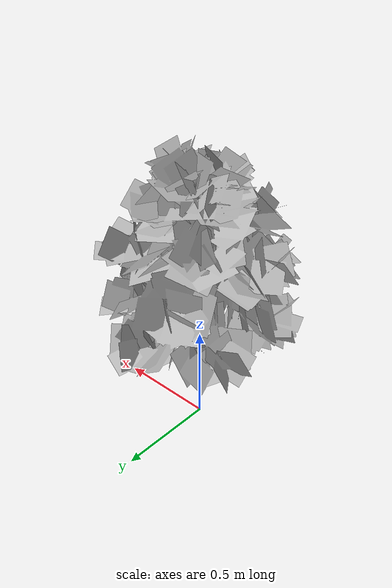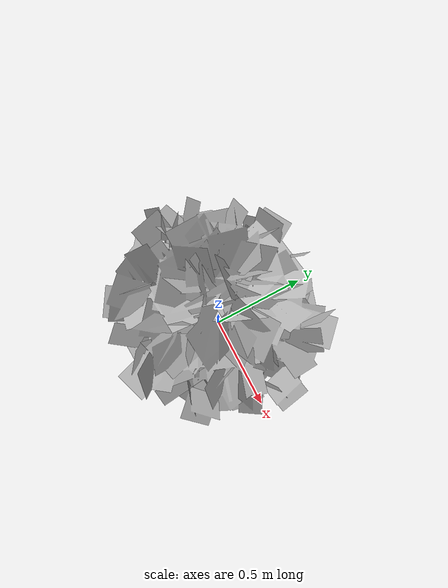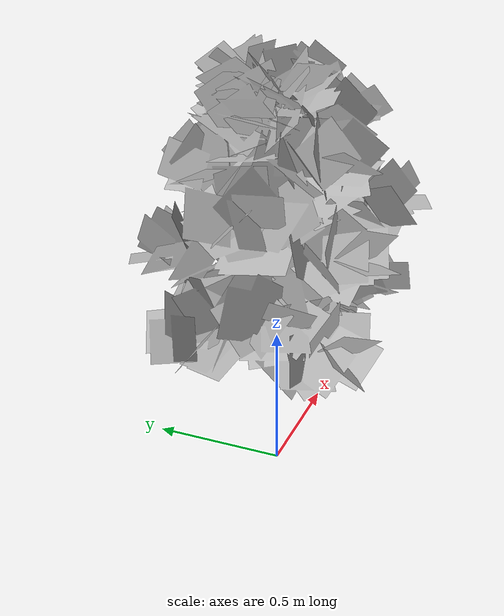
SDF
<?xml version="1.0" ?>
<sdf version="1.6">
  <model name="low_poly_shrub_-_small_texture">
    <static>true</static>
    <link name="link">
      <visual name="visual">
        <geometry>
          <mesh>
            <uri>model://low_poly_shrub_-_small_texture/Untitled.obj</uri>
            <scale>0.001029 0.001029 0.001029</scale>
          </mesh>
        </geometry>
      </visual>
                  <collision name="collision">
        <geometry>
          <mesh>
            <uri>model://low_poly_shrub_-_small_texture/Untitled.obj</uri>
            <scale>0.001029 0.001029 0.001029</scale>
          </mesh>
        </geometry>
      </collision>
    </link>
  </model>
</sdf>
